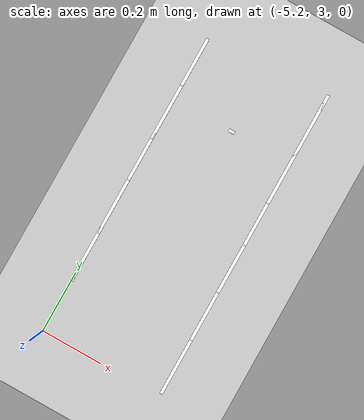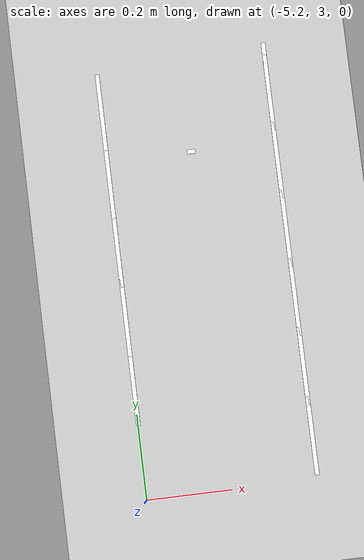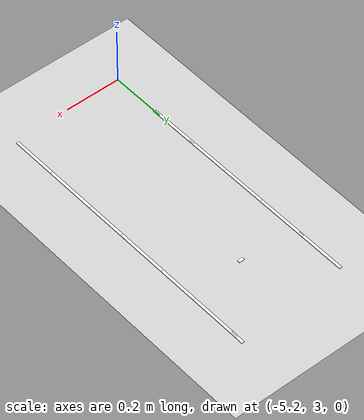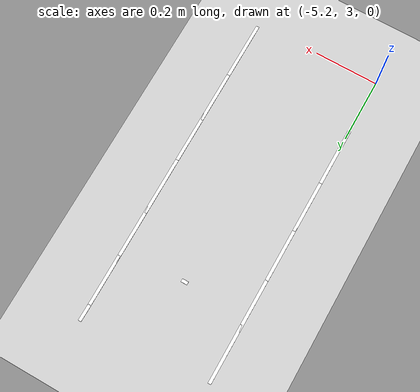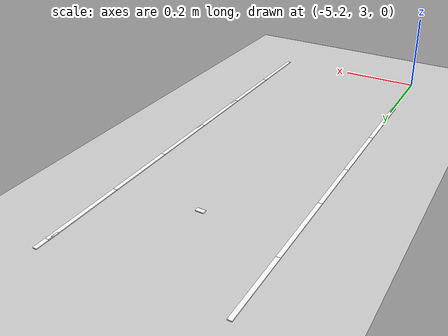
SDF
<sdf version="1.7">
 <world name="default">
  <model name="ground_plane">
   <static>1</static>
   <link name="link">
    <collision name="collision">
     <geometry><plane><normal>0 0 1</normal><size>100 100</size></plane></geometry>
     <surface>
      <contact><collide_bitmask>65535</collide_bitmask></contact>
      <friction><ode><mu>100</mu><mu2>50</mu2></ode></friction>
     </surface>
    </collision>
    <visual name="visual">
     <cast_shadows>0</cast_shadows>
     <geometry><plane><normal>0 0 1</normal><size>100 100</size></plane></geometry>
     <material>
      <script><uri>file://media/materials/scripts/gazebo.material</uri><name>Gazebo/Grey</name></script>
     </material>
    </visual>
   </link>
  </model>
  <model name="lane_line_left_298">
   <static>1</static>
   <link name="link">
    <pose>0 0 -0.004 0 -0 0</pose>
    <visual name="visual">
     <geometry><box><size>0.0521 0.01 0.01</size></box></geometry>
     <material><ambient>1 1 1 1</ambient><diffuse>1 1 1 1</diffuse></material>
    </visual>
    <collision name="collision"><geometry><box><size>0.0521 0.01 0.01</size></box></geometry></collision>
   </link>
   <pose>-4.79977 4.01282 0 0 0 -1.58682</pose>
  </model>
  <model name="lane_line_right_299">
   <static>1</static>
   <link name="link">
    <pose>0 0 -0.004 0 -0 0</pose>
    <visual name="visual">
     <geometry><box><size>0.02 0.01 0.01</size></box></geometry>
     <material><ambient>1 1 1 1</ambient><diffuse>1 1 1 1</diffuse></material>
    </visual>
    <collision name="collision"><geometry><box><size>0.02 0.01 0.01</size></box></geometry></collision>
   </link>
   <pose>-5 3.8 0 0 -0 0</pose>
  </model>
  <model name="lane_line_left_300">
   <static>1</static>
   <link name="link">
    <pose>0 0 -0.004 0 -0 0</pose>
    <visual name="visual">
     <geometry><box><size>0.1833 0.01 0.01</size></box></geometry>
     <material><ambient>1 1 1 1</ambient><diffuse>1 1 1 1</diffuse></material>
    </visual>
    <collision name="collision"><geometry><box><size>0.1833 0.01 0.01</size></box></geometry></collision>
   </link>
   <pose>-4.8 3.91837 0 0 0 -1.5708</pose>
  </model>
  <model name="lane_line_right_300">
   <static>1</static>
   <link name="link">
    <pose>0 0 -0.004 0 -0 0</pose>
    <visual name="visual">
     <geometry><box><size>0.1833 0.01 0.01</size></box></geometry>
     <material><ambient>1 1 1 1</ambient><diffuse>1 1 1 1</diffuse></material>
    </visual>
    <collision name="collision"><geometry><box><size>0.1833 0.01 0.01</size></box></geometry></collision>
   </link>
   <pose>-5.2 3.91837 0 0 0 -1.5708</pose>
  </model>
  <model name="lane_line_left_301">
   <static>1</static>
   <link name="link">
    <pose>0 0 -0.004 0 -0 0</pose>
    <visual name="visual">
     <geometry><box><size>0.1833 0.01 0.01</size></box></geometry>
     <material><ambient>1 1 1 1</ambient><diffuse>1 1 1 1</diffuse></material>
    </visual>
    <collision name="collision"><geometry><box><size>0.1833 0.01 0.01</size></box></geometry></collision>
   </link>
   <pose>-4.8 3.7551 0 0 0 -1.5708</pose>
  </model>
  <model name="lane_line_right_301">
   <static>1</static>
   <link name="link">
    <pose>0 0 -0.004 0 -0 0</pose>
    <visual name="visual">
     <geometry><box><size>0.1833 0.01 0.01</size></box></geometry>
     <material><ambient>1 1 1 1</ambient><diffuse>1 1 1 1</diffuse></material>
    </visual>
    <collision name="collision"><geometry><box><size>0.1833 0.01 0.01</size></box></geometry></collision>
   </link>
   <pose>-5.2 3.7551 0 0 0 -1.5708</pose>
  </model>
  <model name="lane_line_left_302">
   <static>1</static>
   <link name="link">
    <pose>0 0 -0.004 0 -0 0</pose>
    <visual name="visual">
     <geometry><box><size>0.1833 0.01 0.01</size></box></geometry>
     <material><ambient>1 1 1 1</ambient><diffuse>1 1 1 1</diffuse></material>
    </visual>
    <collision name="collision"><geometry><box><size>0.1833 0.01 0.01</size></box></geometry></collision>
   </link>
   <pose>-4.8 3.59184 0 0 0 -1.5708</pose>
  </model>
  <model name="lane_line_right_302">
   <static>1</static>
   <link name="link">
    <pose>0 0 -0.004 0 -0 0</pose>
    <visual name="visual">
     <geometry><box><size>0.1833 0.01 0.01</size></box></geometry>
     <material><ambient>1 1 1 1</ambient><diffuse>1 1 1 1</diffuse></material>
    </visual>
    <collision name="collision"><geometry><box><size>0.1833 0.01 0.01</size></box></geometry></collision>
   </link>
   <pose>-5.2 3.59184 0 0 0 -1.5708</pose>
  </model>
  <model name="lane_line_left_303">
   <static>1</static>
   <link name="link">
    <pose>0 0 -0.004 0 -0 0</pose>
    <visual name="visual">
     <geometry><box><size>0.1833 0.01 0.01</size></box></geometry>
     <material><ambient>1 1 1 1</ambient><diffuse>1 1 1 1</diffuse></material>
    </visual>
    <collision name="collision"><geometry><box><size>0.1833 0.01 0.01</size></box></geometry></collision>
   </link>
   <pose>-4.8 3.42857 0 0 0 -1.5708</pose>
  </model>
  <model name="lane_line_right_303">
   <static>1</static>
   <link name="link">
    <pose>0 0 -0.004 0 -0 0</pose>
    <visual name="visual">
     <geometry><box><size>0.1833 0.01 0.01</size></box></geometry>
     <material><ambient>1 1 1 1</ambient><diffuse>1 1 1 1</diffuse></material>
    </visual>
    <collision name="collision"><geometry><box><size>0.1833 0.01 0.01</size></box></geometry></collision>
   </link>
   <pose>-5.2 3.42857 0 0 0 -1.5708</pose>
  </model>
  <model name="lane_line_left_304">
   <static>1</static>
   <link name="link">
    <pose>0 0 -0.004 0 -0 0</pose>
    <visual name="visual">
     <geometry><box><size>0.1833 0.01 0.01</size></box></geometry>
     <material><ambient>1 1 1 1</ambient><diffuse>1 1 1 1</diffuse></material>
    </visual>
    <collision name="collision"><geometry><box><size>0.1833 0.01 0.01</size></box></geometry></collision>
   </link>
   <pose>-4.8 3.26531 0 0 0 -1.5708</pose>
  </model>
  <model name="lane_line_right_304">
   <static>1</static>
   <link name="link">
    <pose>0 0 -0.004 0 -0 0</pose>
    <visual name="visual">
     <geometry><box><size>0.1833 0.01 0.01</size></box></geometry>
     <material><ambient>1 1 1 1</ambient><diffuse>1 1 1 1</diffuse></material>
    </visual>
    <collision name="collision"><geometry><box><size>0.1833 0.01 0.01</size></box></geometry></collision>
   </link>
   <pose>-5.2 3.26531 0 0 0 -1.5708</pose>
  </model>
  <model name="lane_line_left_305">
   <static>1</static>
   <link name="link">
    <pose>0 0 -0.004 0 -0 0</pose>
    <visual name="visual">
     <geometry><box><size>0.1833 0.01 0.01</size></box></geometry>
     <material><ambient>1 1 1 1</ambient><diffuse>1 1 1 1</diffuse></material>
    </visual>
    <collision name="collision"><geometry><box><size>0.1833 0.01 0.01</size></box></geometry></collision>
   </link>
   <pose>-4.8 3.10204 0 0 0 -1.5708</pose>
  </model>
 </world>
</sdf>
